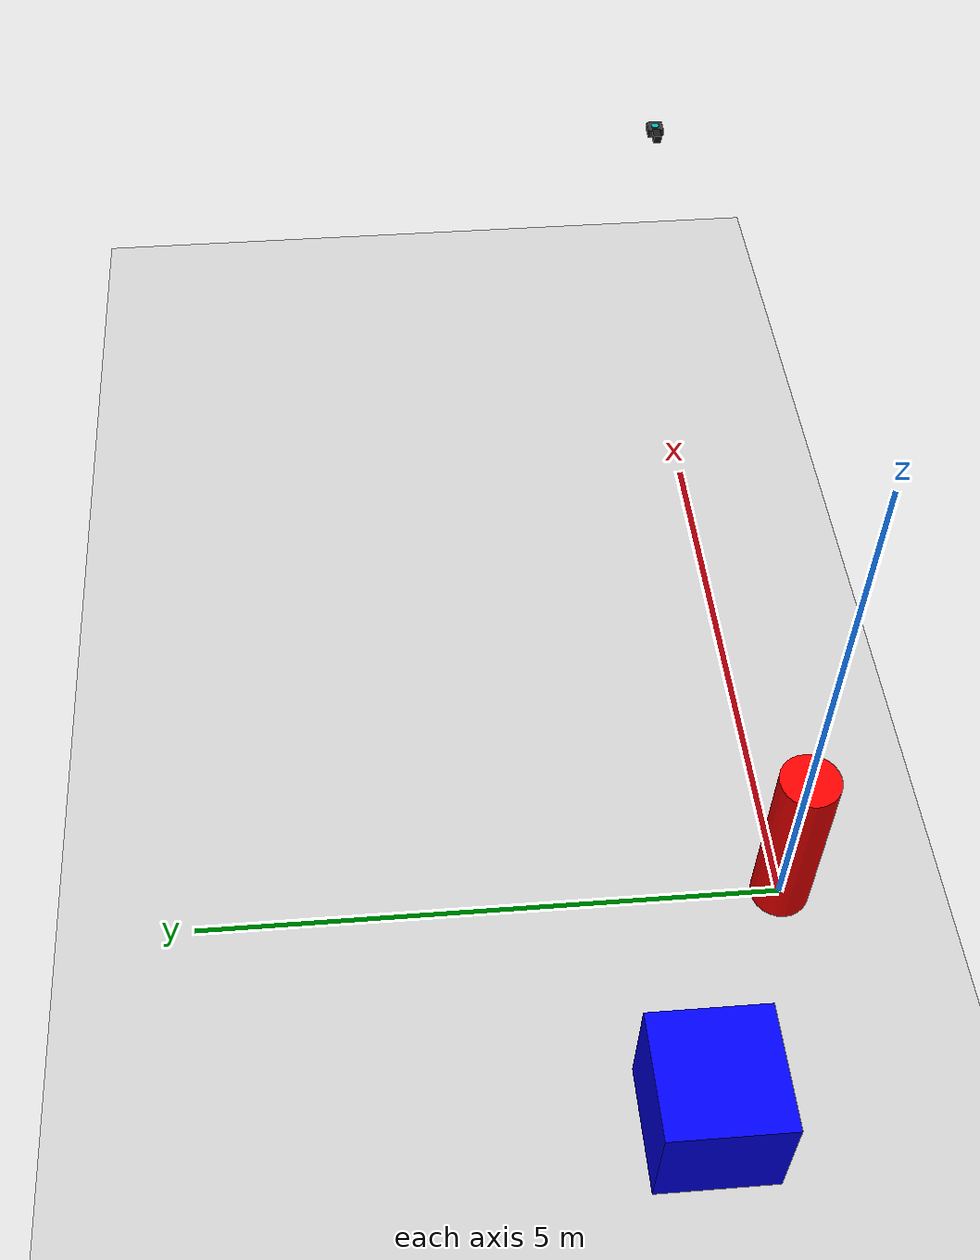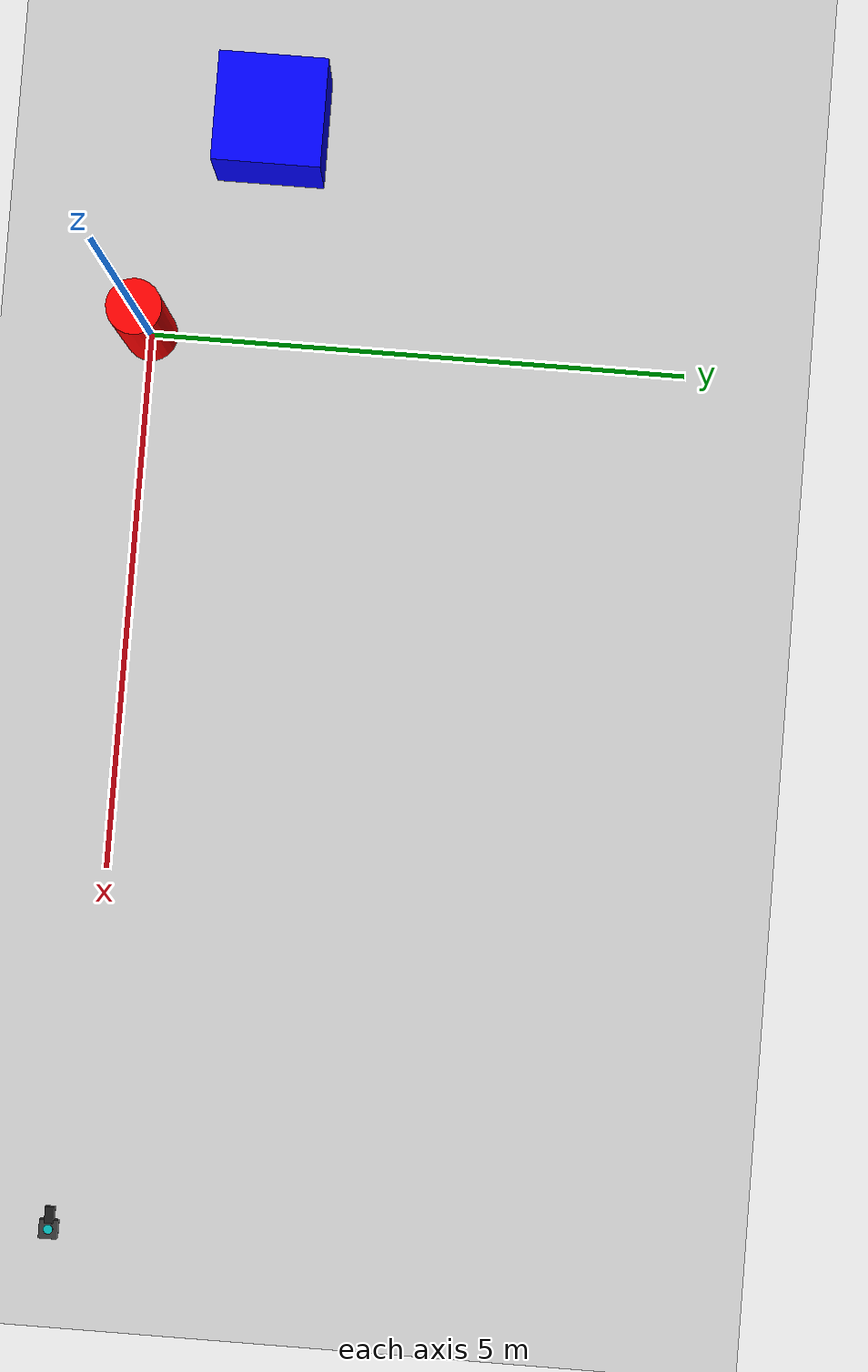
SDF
<?xml version="1.0" ?>
<sdf version="1.9">
  <world name="raptor_mvp">

    <!-- Если явно перечисляешь system plugins, не рассчитывай на дефолтные -->
    <plugin filename="gz-sim-physics-system"
            name="gz::sim::systems::Physics"/>

	<plugin filename="gz-sim-user-commands-system"
        	name="gz::sim::systems::UserCommands"/>

    <plugin filename="gz-sim-sensors-system"
            name="gz::sim::systems::Sensors">
      <render_engine>ogre2</render_engine>
    </plugin>

    <physics name="1ms" type="ignored">
      <max_step_size>0.001</max_step_size>
      <real_time_factor>1.0</real_time_factor>
    </physics>

    <scene>
      <ambient>1.0 1.0 1.0</ambient>
      <background>0.8 0.8 0.8</background>
      <grid>false</grid>
    </scene>

    <light type="directional" name="sun">
      <cast_shadows>true</cast_shadows>
      <pose>0 0 10 0 0 0</pose>
      <diffuse>0.8 0.8 0.8 1</diffuse>
      <specular>0.8 0.8 0.8 1</specular>
      <attenuation>
        <range>1000</range>
        <constant>0.9</constant>
        <linear>0.01</linear>
        <quadratic>0.001</quadratic>
      </attenuation>
      <direction>-0.5 0.1 -0.9</direction>
    </light>

    <model name="ground_plane">
      <static>true</static>
      <link name="link">
        <collision name="collision">
          <geometry>
            <plane>
              <normal>0 0 1</normal>
              <size>100 100</size>
            </plane>
          </geometry>
        </collision>
        <visual name="visual">
          <geometry>
            <plane>
              <normal>0 0 1</normal>
              <size>100 100</size>
            </plane>
          </geometry>
          <material>
            <ambient>0.8 0.8 0.8 1</ambient>
            <diffuse>0.8 0.8 0.8 1</diffuse>
          </material>
        </visual>
      </link>
    </model>

    <!-- Цель-заглушка -->
    <model name="target_stub">
      <static>true</static>
      <pose>0 0 0.85 0 0 0</pose>
      <link name="link">
        <collision name="collision">
          <geometry>
            <cylinder>
              <radius>0.25</radius>
              <length>1.7</length>
            </cylinder>
          </geometry>
        </collision>
        <visual name="visual">
          <geometry>
            <cylinder>
              <radius>0.25</radius>
              <length>1.7</length>
            </cylinder>
          </geometry>
          <material>
            <ambient>1 0 0 1</ambient>
            <diffuse>1 0 0 1</diffuse>
          </material>
        </visual>
      </link>
    </model>

    <!-- Отвлекающий объект -->
    <model name="distractor_box">
      <static>true</static>
      <pose>-2 1 0.5 0 0 0</pose>
      <link name="link">
        <collision name="collision">
          <geometry>
            <box>
              <size>1 1 1</size>
            </box>
          </geometry>
        </collision>
        <visual name="visual">
          <geometry>
            <box>
              <size>1 1 1</size>
            </box>
          </geometry>
          <material>
            <ambient>0 0 1 1</ambient>
            <diffuse>0 0 1 1</diffuse>
          </material>
        </visual>
      </link>
    </model>

    <model name="raptor_gimbal">
	  <pose>8 0 2.2 0 0 3.14159</pose>
	  <self_collide>false</self_collide>

	  <!-- База -->
	  <link name="base_link">
	    <gravity>false</gravity>
	    <inertial>
	      <mass>0.3</mass>
	      <inertia>
		<ixx>0.001</ixx>
		<iyy>0.001</iyy>
		<izz>0.001</izz>
		<ixy>0</ixy>
		<ixz>0</ixz>
		<iyz>0</iyz>
	      </inertia>
	    </inertial>
	    <visual name="base_visual">
	      <geometry>
		<box>
		  <size>0.16 0.16 0.08</size>
		</box>
	      </geometry>
	      <material>
		<ambient>0.2 0.2 0.2 1</ambient>
		<diffuse>0.2 0.2 0.2 1</diffuse>
	      </material>
	    </visual>
	  </link>

	  <!-- Yaw-часть -->
	  <link name="yaw_link">
	    <gravity>false</gravity>
	    <inertial>
	      <mass>0.2</mass>
	      <inertia>
		<ixx>0.0005</ixx>
		<iyy>0.0005</iyy>
		<izz>0.0005</izz>
		<ixy>0</ixy>
		<ixz>0</ixz>
		<iyz>0</iyz>
	      </inertia>
	    </inertial>
	    <pose>0 0 0 0 0 0</pose>
	    <visual name="yaw_visual">
	      <geometry>
		<cylinder>
		  <radius>0.04</radius>
		  <length>0.10</length>
		</cylinder>
	      </geometry>
	      <material>
		<ambient>0.0 0.7 0.7 1</ambient>
		<diffuse>0.0 0.7 0.7 1</diffuse>
	      </material>
	    </visual>
	  </link>

	  <!-- Pitch + camera -->
	  <link name="camera_link">
	    <gravity>false</gravity>
	    <inertial>
	      <mass>0.2</mass>
	      <inertia>
		<ixx>0.0005</ixx>
		<iyy>0.0005</iyy>
		<izz>0.0005</izz>
		<ixy>0</ixy>
		<ixz>0</ixz>
		<iyz>0</iyz>
	      </inertia>
	    </inertial>
	    <pose>0.12 0 0 0 0 0</pose>

	    <visual name="camera_body_visual">
	      <geometry>
		<box>
		  <size>0.14 0.08 0.08</size>
		</box>
	      </geometry>
	      <material>
		<ambient>0.1 0.1 0.1 1</ambient>
		<diffuse>0.1 0.1 0.1 1</diffuse>
	      </material>
	    </visual>

	    <sensor name="camera" type="camera">
	      <always_on>1</always_on>
	      <update_rate>20</update_rate>
	      <visualize>false</visualize>
	      <topic>/raptor/camera</topic>
	      <camera>
		<horizontal_fov>1.047</horizontal_fov>
		<image>
		  <width>640</width>
		  <height>480</height>
		</image>
		<clip>
		  <near>0.1</near>
		  <far>100</far>
		</clip>
	      </camera>
	    </sensor>
	  </link>

	  <!-- yaw joint -->
	  <joint name="yaw_joint" type="revolute">
	    <parent>base_link</parent>
	    <child>yaw_link</child>
	    <axis>
	      <xyz>0 0 1</xyz>
	      <limit>
		<lower>-1.4</lower>
		<upper>1.4</upper>
		<effort>10</effort>
		<velocity>2.0</velocity>
	      </limit>
	      <dynamics>
		<damping>0.1</damping>
	      </dynamics>
	    </axis>
	  </joint>

	  <!-- pitch joint -->
	  <joint name="pitch_joint" type="revolute">
	    <parent>yaw_link</parent>
	    <child>camera_link</child>
	    <pose>0.06 0 0 0 0 0</pose>
	    <axis>
	      <xyz>0 1 0</xyz>
	      <limit>
		<lower>-0.7</lower>
		<upper>0.7</upper>
		<effort>10</effort>
		<velocity>2.0</velocity>
	      </limit>
	      <dynamics>
		<damping>0.1</damping>
	      </dynamics>
	    </axis>
	  </joint>

	  <!-- Yaw controller -->
	  <plugin
	    filename="gz-sim-joint-position-controller-system"
	    name="gz::sim::systems::JointPositionController">
	    <joint_name>yaw_joint</joint_name>
	    <topic>/raptor/gimbal/yaw_cmd</topic>
	    <use_velocity_commands>true</use_velocity_commands>
	    <cmd_max>1.2</cmd_max>
	  </plugin>

	  <!-- Pitch controller -->
	  <plugin
	    filename="gz-sim-joint-position-controller-system"
	    name="gz::sim::systems::JointPositionController">
	    <joint_name>pitch_joint</joint_name>
	    <topic>/raptor/gimbal/pitch_cmd</topic>
	    <use_velocity_commands>true</use_velocity_commands>
	    <cmd_max>1.0</cmd_max>
	  </plugin>

	  <!-- Joint states -->
	  <plugin
	    filename="gz-sim-joint-state-publisher-system"
	    name="gz::sim::systems::JointStatePublisher">
	    <topic>/raptor/gimbal/joint_state</topic>
	    <joint_name>yaw_joint</joint_name>
	    <joint_name>pitch_joint</joint_name>
	  </plugin>
	</model>

  </world>
</sdf>
